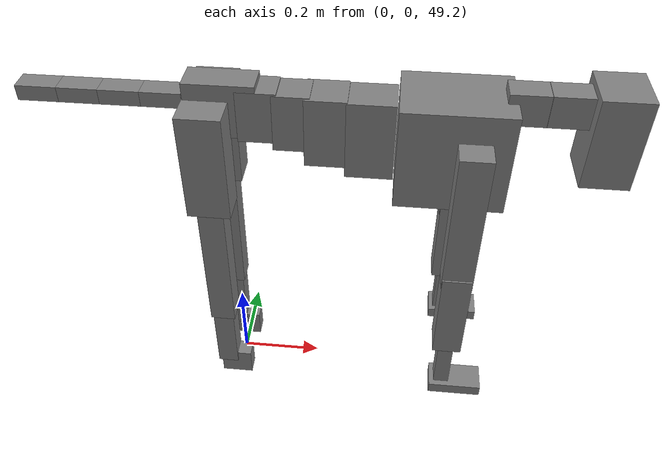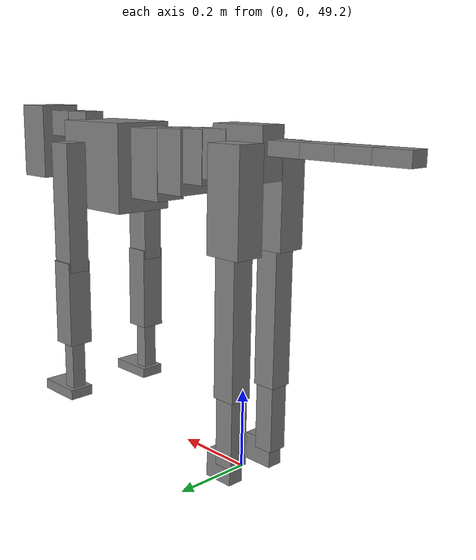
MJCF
<mujoco model="dog">

    <default>
        <joint armature="0.02" stiffness="1" damping="0.2" limited="true"/>
        <geom condim="3" friction="1 0.05 0.05" margin="0.01"/>
        <motor ctrllimited="true" ctrlrange="-1.0 1.0" forcelimited="true" gear="50"/>
    </default>

    <compiler inertiafromgeom="true" angle="radian"/>

    <option timestep="0.016" iterations="50" tolerance="1e-10" solver="Newton" jacobian="dense" cone="pyramidal"/>

    <size nconmax="20000" njmax="60000" nstack="5000000"/>
    <visual>
        <map force="0.1" zfar="30"/>
        <rgba haze="0.15 0.25 0.35 1"/>
        <quality shadowsize="2048"/>
        <global offwidth="800" offheight="800"/>
    </visual>

    <asset>
        <texture type="skybox" builtin="gradient" rgb1="0.3 0.5 0.7" rgb2="0 0 0" width="512" height="512"/>
        <texture name="texplane" type="2d" builtin="checker" rgb1=".2 .3 .4" rgb2=".1 0.15 0.2" width="512" height="512"
                 mark="cross" markrgb=".8 .8 .8"/>
        <texture name="texgeom" type="cube" builtin="flat" mark="cross" width="127" height="1278" rgb1="0.8 0.6 0.4"
                 rgb2="0.8 0.6 0.4" markrgb="1 1 1" random="0.01"/>

        <material name="matplane" reflectance="0.3" texture="texplane" texrepeat="1 1" texuniform="true"/>
        <material name="matgeom" texture="texgeom" texuniform="true" rgba="0.8 0.6 .4 1"/>
    </asset>

    <worldbody>
        <geom name="floor" pos="0 0 0" size="0 0 .25" type="plane" material="matplane" condim="3"/>

        <light directional="false" diffuse=".2 .2 .2" specular="0 0 0" pos="0 0 5" dir="0 0 -1" castshadow="false"/>
        <light mode="targetbodycom" target="torso" directional="false" diffuse=".8 .8 .8" specular="0.3 0.3 0.3"
               pos="0 0 4.0" dir="0 0 -1"/>

        <body name="root" pos="0 0 50">
            <freejoint name="root_1"/>
            <geom type="box" pos="0 0 -0.02" size="0.0774  0.0358  0.063" density="2030"/>

            <body name="spine1" pos="0.054 0 0">
                <joint name="spine1_y" axis="0 1 0" range="0 0.7" limited="true"/>
                <geom type="box" pos="0.02375 0 -0.03" size="0.04375  0.0375  0.05985" density="2030"/>

                <body name="spine2" pos="0.0612 0 0">
                    <joint name="spine2_y" axis="0 1 0" range="-0.15 0.15" limited="true"/>
                    <geom type="box" pos="0.03555  0  -0.04" size="0.04055  0.039  0.06615" density="2030"/>

                    <body name="spine3" pos="0.0730 0 0">
                        <joint name="spine3_y" axis="0 1 0" range="-0.15 0.15" limited="true"/>
                        <geom type="box" pos="0.03555  0  -0.057" size="0.04555  0.0445  0.081" density="2030"/>

                        <body name="spine4" pos="0.0780 0 0">
                            <joint name="spine4_y" axis="0 1 0" range="-0.15 0.15" limited="true"/>
                            <geom type="box" pos="0.05265  0  -0.07" size="0.05265  0.045  0.09135" density="2030"/>

                            <body name="torso" pos="0.1082 0 0">
                                <joint name="torso_y" axis="0 1 0" range="-0.15 0.15" limited="true"/>
                                <geom type="box" pos="0.11925  0  -0.085" size="0.11925  0.085  0.11745"
                                      density="2030"/>

                                <body name="neck1" pos="0.2160  0   0.0180">
                                    <joint name="neck1_y" axis="0 1 0" range="-1.2  -1" limited="true"/>
                                    <geom type="box" pos="0.0423  0  0" size="0.0423  0.03  0.036" density="2325"/>

                                    <body name="neck2" pos="0.0853  0  0">
                                        <joint name="neck2_y" axis="0 1 0" range="0.1  0" limited="true"/>
                                        <geom type="box" pos="0.0423  0  0" size="0.0423  0.03  0.036" density="2325"/>

                                        <body name="head" pos="0.0853  0  0">
                                            <joint name="head_y" axis="0 1 0" range="-0.3  -0.2" limited="true"/>
                                            <geom type="box" pos="0.0531  0  -0.055" size="0.0531  0.06  0.1044"
                                                  density="4030"/>

                                        </body>
                                    </body>
                                </body>

                                <body name="front_shoulder" pos="0.156  0   -0.0480">
                                    <joint name="front_shoulder_y" axis="0 1 0" range="-1 1.5" limited="true"/>
                                    <geom type="box" pos="0 0.13 -0.1476" size="0.0349  0.0298  0.1743" density="1158"/>
                                    <geom type="box" pos="0 -0.13 -0.1476" size="0.0349  0.0298  0.1743"
                                          density="1158"/>

                                    <body name="front_elbow" pos="0  0  -0.2953">
                                        <joint name="front_elbow_y" axis="0 1 0" range="-2 0" limited="true"/>
                                        <geom type="box" pos="0 0.13 -0.1167" size="0.0336  0.0343  0.1167"
                                              density="1081"/>
                                        <geom type="box" pos="0 -0.13 -0.1167" size="0.0336  0.0343  0.1167"
                                              density="1081"/>

                                        <body name="front_wrist" pos="0  0  -0.2333">
                                            <joint name="front_wrist_y" axis="0 1 0" range="-0.2 0" limited="true"/>
                                            <geom type="box" pos="0 0.13 -0.0730" size="0.0185  0.0205  0.0862"
                                                  density="1664"/>
                                            <geom type="box" pos="0 -0.13 -0.0730" size="0.0185  0.0205  0.0862"
                                                  density="1664"/>

                                            <body name="front_finger_end" pos="0  0  -0.1460">
                                                <joint name="front_finger_y" axis="0 1 0" range="-0.4 1"
                                                       limited="true"/>
                                                <geom type="box" pos="0.0348  0.13  0.0010"
                                                      size="0.0637  0.0348  0.0140" density="1515"/>
                                                <geom type="box" pos="0.0348  -0.13  0.0010"
                                                      size="0.0637  0.0348  0.0140" density="1515"/>

                                            </body>

                                        </body>
                                    </body>
                                </body>

                            </body>
                        </body>
                    </body>
                </body>
            </body>

            <body name="back_hip" pos="-0.03 0 -0.018">
                <joint name="back_hip_y" axis="0 1 0" range="-1.5 0.3" limited="true"/>
                <geom type="box" pos="0 0.07 -0.1046" size="0.0491  0.0385  0.1274" density="1154"/>
                <geom type="box" pos="0 -0.07 -0.1046" size="0.0491  0.0385  0.1274" density="1154"/>

                <body name="back_knee" pos="0  0  -0.2092">
                    <joint name="back_knee_y" axis="0 1 0" range="0 2.8" limited="true"/>
                    <geom type="box" pos="0 0.07 -0.1745" size="0.0300  0.0295  0.1901" density="1227"/>
                    <geom type="box" pos="0 -0.07 -0.1745" size="0.0300  0.0295  0.1901" density="1227"/>

                    <body name="back_ankle" pos="0  0  -0.3491">
                        <joint name="back_ankle_y" axis="0 1 0" range="-2.2 0" limited="true"/>
                        <geom type="box" pos="0 0.07 -0.0871" size="0.0254  0.0254  0.0983" density="1284"/>
                        <geom type="box" pos="0 -0.07 -0.0871" size="0.0254  0.0254  0.0983" density="1284"/>

                        <body name="back_toe_end" pos="0  0  -0.1741">
                            <joint name="back_toe_y" axis="0 1 0" range="-0.4 1" limited="true"/>
                            <geom type="box" pos="0.0212  0.07  -0.0204" size="0.0389  0.0212  0.0354" density="1515"/>
                            <geom type="box" pos="0.0212  -0.07  -0.0204" size="0.0389  0.0212  0.0354" density="1515"/>

                        </body>
                    </body>
                </body>
            </body>

            <body name="tail1" pos="-0.074 0 -0.006">
                <joint name="tail1_y" axis="0 1 0" range="-0.2 0.2" limited="true"/>
                <geom type="box" pos="-0.0536  0  0" size="0.045  0.025  0.0175" density="1587"/>

                <body name="tail2" pos="-0.09 0 0">
                    <joint name="tail2_y" axis="0 1 0" range="-0.2 0.2" limited="true"/>
                    <geom type="box" pos="-0.0536  0  0" size="0.045  0.025  0.0175" density="1587"/>

                    <body name="tail3" pos="-0.09 0 0">
                        <joint name="tail3_y" axis="0 1 0" range="-0.2 0.2" limited="true"/>
                        <geom type="box" pos="-0.0536  0  0" size="0.045  0.025  0.0175" density="1587"/>

                        <body name="tail4" pos="-0.09 0 0">
                            <joint name="tail4_y" axis="0 1 0" range="-0.2 0.2" limited="true"/>
                            <geom type="box" pos="-0.0536  0  0" size="0.045  0.025  0.0175" density="1587"/>

                        </body>
                    </body>
                </body>
            </body>
        </body>
    </worldbody>

    <actuator>
        <motor joint="spine1_y" forcerange="-150 150     "/>
        <motor joint="spine2_y" forcerange="-150 150     "/>
        <motor joint="spine3_y" forcerange="-150 150     "/>
        <motor joint="spine4_y" forcerange="-150 150     "/>
        <motor joint="torso_y" forcerange="-150 150     "/>
        <motor joint="neck1_y" forcerange="-100 100       "/>
        <motor joint="neck2_y" forcerange="-100 100       "/>
        <motor joint="head_y" forcerange="-150 150       "/>
        <motor joint="front_shoulder_y" forcerange="-182.05 116.61"/>
        <motor joint="front_elbow_y" forcerange="-154.58 195.18"/>
        <motor joint="front_wrist_y" forcerange="-78.49 85.72"/>
        <motor joint="front_finger_y" forcerange="-60.04 85.38"/>
        <motor joint="back_hip_y" forcerange="-347.94 365.96"/>
        <motor joint="back_knee_y" forcerange="-311.90 317.71"/>
        <motor joint="back_angle_y" forcerange="-238.52 67.93"/>
        <motor joint="back_toe_y" forcerange="-68.64 21.10"/>
        <motor joint="tail1_y" forcerange="-50 50     "/>
        <motor joint="tail2_y" forcerange="-50 50     "/>
        <motor joint="tail3_y" forcerange="-50 50     "/>
        <motor joint="tail4_y" forcerange="-50 50     "/>
    </actuator>
</mujoco>
